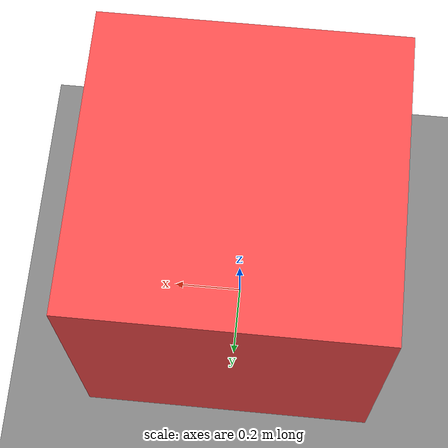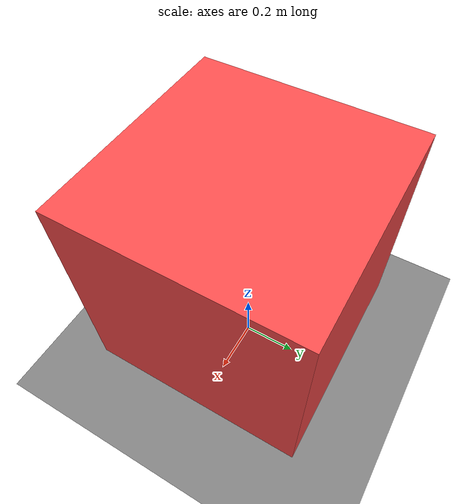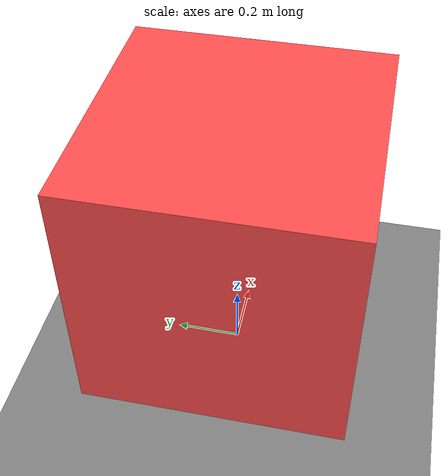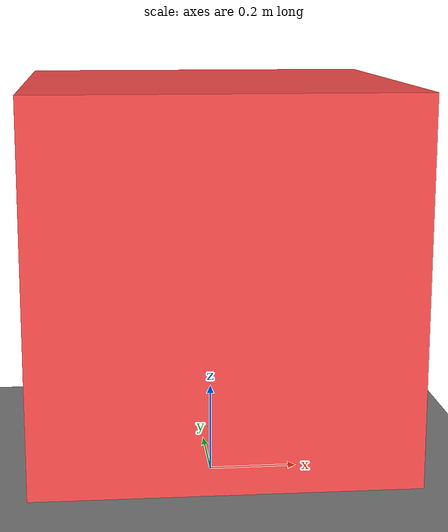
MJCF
<?xml version="1.0" encoding="utf-8"?>
<mujoco model="grid_cube_scene">
  <option timestep="0.002" gravity="0 0 -9.81"/>

  <visual>
    <global offwidth="1920" offheight="1080"/>
  </visual>

  <asset>
    <!-- Grid texture: High-resolution 16x16 checkerboard pattern -->
    <texture name="grid_texture" type="2d" builtin="checker"
             rgb1="0.8 0.8 0.8" rgb2="0.2 0.2 0.2" width="256" height="256"/>
    <material name="grid_material" texture="grid_texture" texrepeat="4 4"/>
    <material name="cube_material" rgba="1.0 0.3 0.3 1"/>
  </asset>

  <worldbody>
    <!-- Ground plane with 8x8 grid -->
    <!-- Size is 4x4 to cover -4 to 4 range, giving 8 units total -->
    <geom name="ground" type="plane" size="4 4 0.1" pos="0 0 0" material="grid_material"/>

    <!-- Cube that spawns randomly in grid -->
    <!-- Position will be randomized in code: x,y between -3.5 to 3.5 in 1-unit steps -->
    <!-- Size is 0.4 to fit well within a grid cell -->
    <body name="cube" pos="0 0 0.5">
      <joint name="cube_joint" type="free"/>
      <geom name="cube_geom" type="box" size="0.4 0.4 0.4" material="cube_material" mass="0.1"/>
    </body>

    <!-- Lighting -->
    <light name="overhead_light" pos="0 0 10" mode="fixed"/>
    <light name="side_light" pos="5 5 8" mode="fixed"/>

    <!-- Camera looking down at the 8x8 grid -->
    <camera name="grid_camera" pos="0 0 15" xyaxes="1 0 0 0 1 0" mode="fixed"/>
  </worldbody>
</mujoco>
